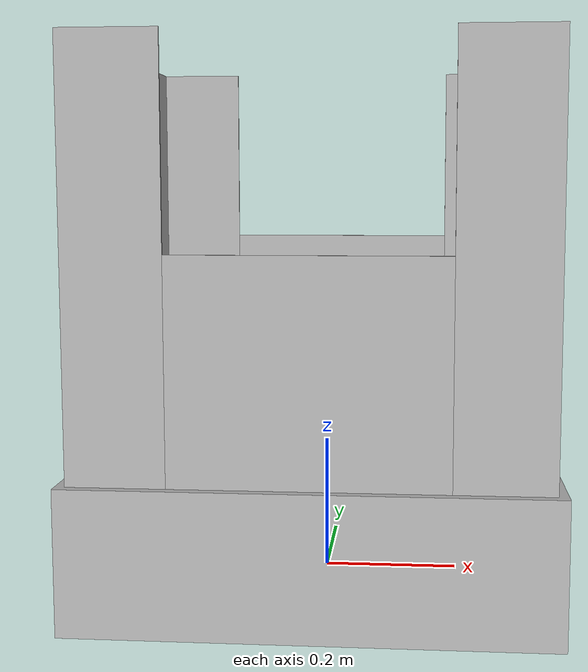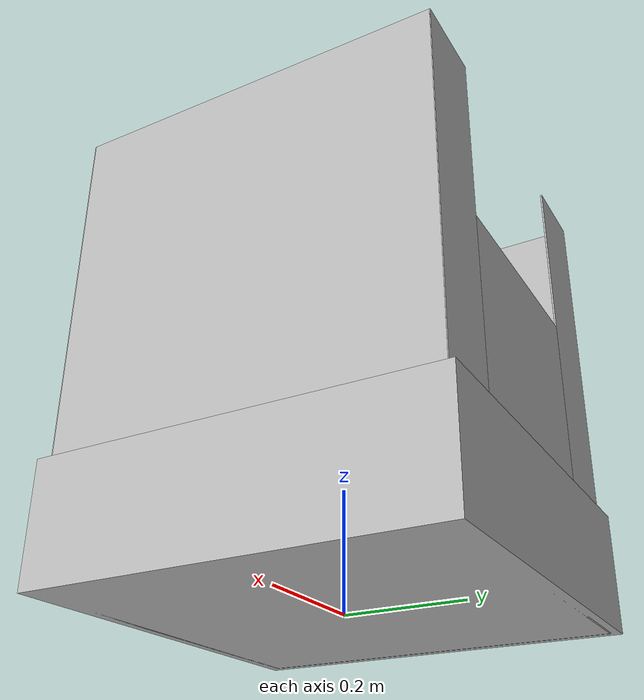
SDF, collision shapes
<?xml version="1.0" ?>
<sdf version="1.6">
  <model name="workcell_bin_1">
    <static>true</static>
    <link name="link">
      <visual name="visual">
        <geometry>
          <mesh>
            <uri>model://workcell_bin_1/meshes/bin.dae</uri>
          </mesh>
        </geometry>
      </visual>
      <collision name="base">
        <pose>0 0 0.100245 0 0 0</pose>
        <geometry>
          <box>
            <size>0.66836 0.66836 0.20049</size>
          </box>
        </geometry>
      </collision>

      <collision name="left_wall">
        <pose>-0.319 0 0.395445 0 0 0</pose>
        <geometry>
          <box>
            <size>0.003 0.63803 0.79089</size>
          </box>
        </geometry>
      </collision>

      <collision name="right_wall">
        <pose>0.319 0 0.395445 0 0 0</pose>
        <geometry>
          <box>
            <size>0.003 0.63803 0.79089</size>
          </box>
        </geometry>
      </collision>

      <collision name="front_left_wall">
        <pose>-0.25331 0.31899 0.395445 0 0 0</pose>
        <geometry>
          <box>
            <size>0.13437 0.003 0.79089</size>
          </box>
        </geometry>
      </collision>

      <collision name="front_mid_wall">
        <pose>0 0.31899 0.252845 0 0 0</pose>
        <geometry>
          <box>
            <size>0.37226 0.003 0.50569</size>
          </box>
        </geometry>
      </collision>

      <collision name="front_right_wall">
        <pose>0.25331 0.31899 0.395445 0 0 0</pose>
        <geometry>
          <box>
            <size>0.13437 0.003 0.79089</size>
          </box>
        </geometry>
      </collision>

      <collision name="back_left_wall">
        <pose>-0.25331 -0.31899 0.395445 0 0 0</pose>
        <geometry>
          <box>
            <size>0.13437 0.003 0.79089</size>
          </box>
        </geometry>
      </collision>

      <collision name="back_mid_wall">
        <pose>0 -0.31899 0.252845 0 0 0</pose>
        <geometry>
          <box>
            <size>0.37226 0.003 0.50569</size>
          </box>
        </geometry>
      </collision>

      <collision name="back_right_wall">
        <pose>0.25331 -0.31899 0.395445 0 0 0</pose>
        <geometry>
          <box>
            <size>0.13437 0.003 0.79089</size>
          </box>
        </geometry>
      </collision>
    </link>
  </model>
</sdf>
